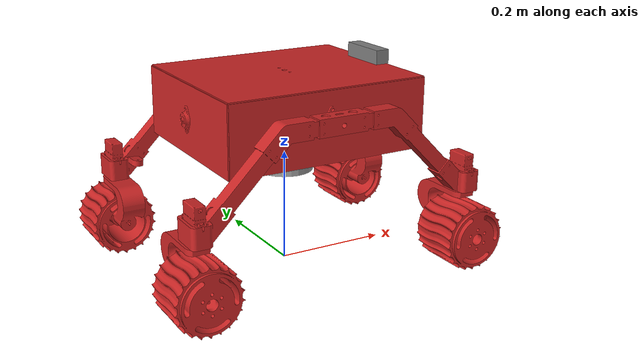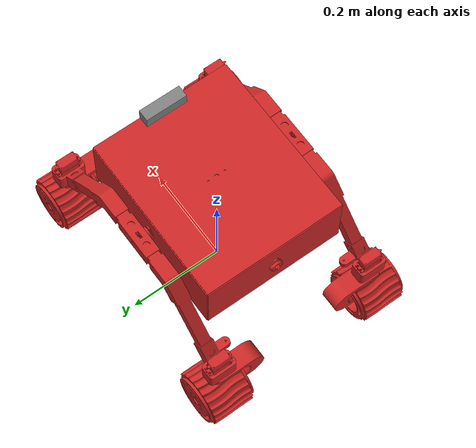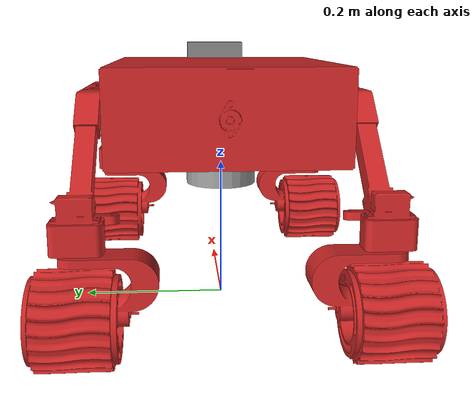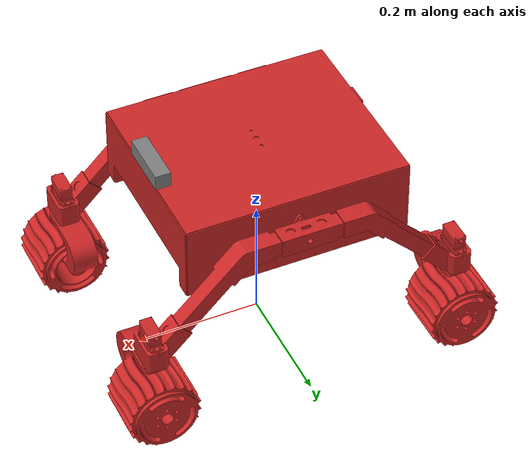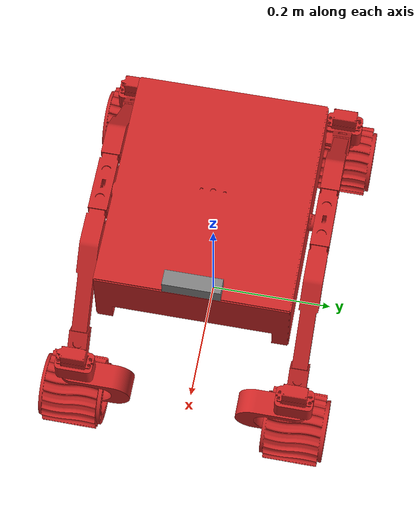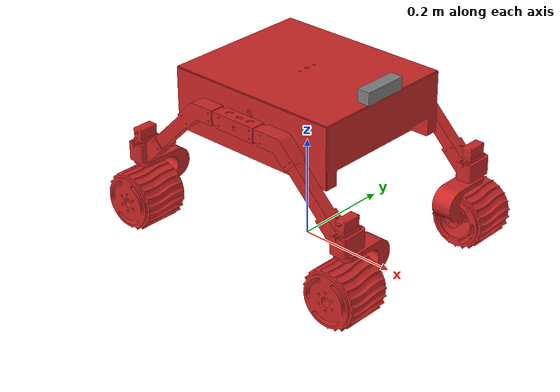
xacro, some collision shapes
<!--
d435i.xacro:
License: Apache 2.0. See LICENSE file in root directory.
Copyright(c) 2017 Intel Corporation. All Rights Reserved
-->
<?xml version="1.1"?>

<robot name="anveshika" xmlns:xacro="https://www.ros.org/wiki/xacro">

    <xacro:include filename="$(find anveshika_description)/urdf/d435i.xacro"/>
    <xacro:include filename="$(find anveshika_description)/urdf/rover.xacro"/>
    <xacro:include filename="$(find anveshika_description)/urdf/gazebo.xacro"/>
    <xacro:include filename="$(find anveshika_description)/urdf/lidar.xacro"/>

</robot>

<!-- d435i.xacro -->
<robot xmlns:xacro="http://ros.org/wiki/xacro">
  <!--File includes-->
  <xacro:include filename="$(find anveshika_description)/urdf/d435i.gazebo.xacro"/>

  <xacro:macro name="sensor_d435i" params="name:=camera
                                          topics_ns:=camera
                                          visualize:=false
                                          align_depth:=false
                                          enable_pointCloud:=false

                                          unite_imu_method:=false
                                          accel_fps:=250
                                          gyro_fps:=400

                                          clip_distance:=-1.0
                                          depth_width:=1280
                                          depth_height:=720
                                          depth_fps:=30

                                          infra_width:=640
                                          infra_height:=480
                                          infra_fps:=30

                                          color_width:=1920
                                          color_height:=1080
                                          color_fps:=30">
    <xacro:property name="M_PI" value="3.1415926535897931"/>

    <!-- The following values are approximate, and the camera node
     publishing TF values with actual calibrated camera extrinsic values -->
    <xacro:property name="d435i_cam_depth_to_left_ir_offset" value="0.0"/>
    <xacro:property name="d435i_cam_depth_to_right_ir_offset" value="-0.050"/>
    <xacro:property name="d435i_cam_depth_to_color_offset" value="0.015"/>

    <!-- The following values model the aluminum peripherial case for the
  	D435 camera, with the camera joint represented by the actual
  	peripherial camera tripod mount -->
    <xacro:property name="d435i_cam_width" value="0.090"/>
    <xacro:property name="d435i_cam_height" value="0.025"/>
    <xacro:property name="d435i_cam_depth" value="0.02505"/>
    <xacro:property name="d435i_cam_mount_from_center_offset" value="0.0149"/>

    <!-- The following offset is relative the the physical D435 camera peripherial
  	camera tripod mount -->
    <xacro:property name="d435i_cam_depth_px" value="${d435i_cam_mount_from_center_offset}"/>
    <xacro:property name="d435i_cam_depth_py" value="0.0175"/>
    <xacro:property name="d435i_cam_depth_pz" value="${d435i_cam_height/2}"/>

    <material name="${name}_aluminum">
	  <color rgba="0.5 0.5 0.5 1"/>
    </material>

    <link name="${name}_bottom_screw_frame"/>

    <joint name="${name}_link_joint" type="fixed">
      <origin xyz="0 ${d435i_cam_depth_py} ${d435i_cam_depth_pz}" rpy="0 0 0"/>
      <parent link="${name}_bottom_screw_frame"/>
      <child link="${name}_link"/>
    </joint>

    <link name="${name}_link">
      <visual>
      <origin xyz="${d435i_cam_mount_from_center_offset} ${-d435i_cam_depth_py} 0" rpy="${M_PI/2} 0 ${M_PI/2}"/>
        <geometry>
          <mesh filename="package://anveshika_description/meshes/d435.dae"/>
        </geometry>
        <material name="${name}_aluminum"/>
      </visual>
      <collision>
        <origin xyz="0 ${-d435i_cam_depth_py} 0" rpy="0 0 0"/>
        <geometry>
        <box size="${d435i_cam_depth} ${d435i_cam_width} ${d435i_cam_height}"/>
        </geometry>
      </collision>
      <inertial>
        <!-- The following are not reliable values, and should not be used for modeling -->
        <mass value="0.564"/>
        <origin xyz="0 0 0"/>
        <inertia ixx="0.003881243" ixy="0.0" ixz="0.0" iyy="0.000498940" iyz="0.0" izz="0.003879257"/>
      </inertial>
    </link>

    <!-- camera depth joints and links -->
    <joint name="${name}_depth_joint" type="fixed">
      <origin xyz="0 0 0" rpy="0 0 0"/>
      <parent link="${name}_link"/>
      <child link="${name}_depth_frame"/>
    </joint>
    <link name="${name}_depth_frame"/>

    <joint name="${name}_depth_optical_joint" type="fixed">
      <origin xyz="0 0 0" rpy="${-M_PI/2} 0 ${-M_PI/2}"/>
      <parent link="${name}_depth_frame"/>
      <child link="${name}_depth_optical_frame"/>
    </joint>
    <link name="${name}_depth_optical_frame"/>

    <!-- camera left IR joints and links -->
    <joint name="${name}_left_ir_joint" type="fixed">
      <origin xyz="0 ${d435i_cam_depth_to_left_ir_offset} 0" rpy="0 0 0"/>
      <parent link="${name}_depth_frame"/>
      <child link="${name}_left_ir_frame"/>
    </joint>
    <link name="${name}_left_ir_frame"/>

    <joint name="${name}_left_ir_optical_joint" type="fixed">
      <origin xyz="0 0 0" rpy="${-M_PI/2} 0 ${-M_PI/2}"/>
      <parent link="${name}_left_ir_frame"/>
      <child link="${name}_left_ir_optical_frame"/>
    </joint>
    <link name="${name}_left_ir_optical_frame"/>

    <!-- camera right IR joints and links -->
    <joint name="${name}_right_ir_joint" type="fixed">
      <origin xyz="0 ${d435i_cam_depth_to_right_ir_offset} 0" rpy="0 0 0"/>
      <parent link="${name}_depth_frame"/>
      <child link="${name}_right_ir_frame"/>
    </joint>
    <link name="${name}_right_ir_frame"/>

    <joint name="${name}_right_ir_optical_joint" type="fixed">
      <origin xyz="0 0 0" rpy="${-M_PI/2} 0 ${-M_PI/2}"/>
      <parent link="${name}_right_ir_frame"/>
      <child link="${name}_right_ir_optical_frame"/>
    </joint>
    <link name="${name}_right_ir_optical_frame"/>

    <!-- camera color joints and links -->
    <joint name="${name}_color_joint" type="fixed">
      <origin xyz="0 ${d435i_cam_depth_to_color_offset} 0" rpy="0 0 0"/>
      <parent link="${name}_depth_frame"/>
      <child link="${name}_color_frame"/>
    </joint>
    <link name="${name}_color_frame"/>

    <joint name="${name}_color_optical_joint" type="fixed">
      <origin xyz="0 0 0" rpy="${-M_PI/2} 0 ${-M_PI/2}"/>
      <parent link="${name}_color_frame"/>
      <child link="${name}_color_optical_frame"/>
    </joint>
    <link name="${name}_color_optical_frame"/>

    <!-- camera accel joints and links -->
    <joint name="${name}_accel_joint" type="fixed">
      <origin xyz="-0.00174 0.00552 0.0176" rpy="0 0 0"/>
      <parent link="${name}_link"/>
      <child link="${name}_accel_frame"/>
    </joint>
    <link name="${name}_accel_frame"/>

    <joint name="${name}_accel_optical_joint" type="fixed">
      <origin xyz="0 0 0" rpy="${-M_PI/2} 0 ${-M_PI/2}"/>
      <parent link="${name}_accel_frame"/>
      <child link="${name}_accel_optical_frame"/>
    </joint>
    <link name="${name}_accel_optical_frame"/>

    <!-- camera gyro joints and links -->
    <joint name="${name}_gyro_joint" type="fixed">
      <origin xyz="-0.00174 0.00552 0.0176" rpy="0 0 0"/>
      <parent link="${name}_link"/>
      <child link="${name}_gyro_frame"/>
    </joint>
    <link name="${name}_gyro_frame"/>

    <joint name="${name}_gyro_optical_joint" type="fixed">
      <origin xyz="0 0 0" rpy="${-M_PI/2} 0 ${-M_PI/2}"/>
      <parent link="${name}_gyro_frame"/>
      <child link="${name}_gyro_optical_frame"/>
    </joint>
    <link name="${name}_gyro_optical_frame"/>

    <!-- Realsense Gazebo Plugin -->
    <xacro:gazebo_d435i camera_name="${name}"
                        topics_ns="${topics_ns}"
                        reference_link="${name}_link"

                        depth_optical_frame="${name}_depth_optical_frame"
                        depth_width="${depth_width}"
                        depth_height="${depth_height}"
                        depth_fps="${depth_fps}"

                        color_optical_frame="${name}_color_optical_frame"
                        color_width="${color_width}"
                        color_height="${color_height}"
                        color_fps="${color_fps}"

                        infrared1_optical_frame="${name}_left_ir_optical_frame"
                        infrared2_optical_frame="${name}_right_ir_optical_frame"
                        infra_width="${infra_width}"
                        infra_height="${infra_height}"
                        infra_fps="${infra_fps}"

                        accel_optical_frame="${name}_accel_optical_frame"
                        gyro_optical_frame="${name}_gyro_optical_frame"
                        accel_fps="${accel_fps}"
                        gyro_fps="${gyro_fps}"

                        enable_pointCloud="${enable_pointCloud}"
                        unite_imu_method="${unite_imu_method}"
                        clip_distance="${clip_distance}"
                        align_depth="${align_depth}"
                        visualize="${visualize}"
    />

  </xacro:macro>
</robot>

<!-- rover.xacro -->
<robot xmlns:xacro="https://www.ros.org/wiki/xacro">

    <!-- For RViz -->
    <xacro:property name="meshes_address" value="package://anveshika_description/meshes/rover" />

    <link name="base_footprint"/>

    <joint name="base_joint" type = "fixed">
        <parent link="base_footprint"/>
        <child link="base_link"/>

        <origin xyz="0 0 0.235" rpy="0 0 0"/>
    </joint>

    <link name = "base_link">
        <visual>
            <geometry>
                <mesh filename="${meshes_address}/box.stl"
                       scale="0.001 0.001 0.001" />
            </geometry>

            <origin xyz = "0 0 0" rpy = "0 0 0"/>
        </visual>
        <collision>
            <geometry>
                <box size="0.36 0.30 0.12" />
            </geometry>

            <origin xyz = "0 0 0.045" rpy = "0 0 0"/>
        </collision>

        <inertial>
            <origin xyz="0 0 0" rpy="0 0 0"/>
            <mass value="4.0"/>
            <inertia ixx="${0.05835}" ixy = "0" ixz = "${-0.0008805}"
                    iyy="${0.06894}" iyz = "0"
                        izz="${0.09218}"/>
        </inertial>
    </link>

    <gazebo reference="base_link">
        <material>Gazebo/Red</material>
    </gazebo>

    <joint name="realsense_joint" type = "fixed">
        <parent link="base_link"/>
        <child link="realsense_d435i_bottom_screw_frame"/>

        <origin xyz="0.17 0 0.11" rpy="0 0 0"/>
    </joint>

    <xacro:sensor_d435i name="realsense_d435i"
                        topics_ns="camera"
                        visualize="false"
                        align_depth="true"
                        enable_pointCloud="true"
                        unite_imu_method="linear_interpolation"
                        accel_fps="250"
                        gyro_fps="400"
                        clip_distance="6.0"
                        depth_width="1280"
                        depth_height="720"
                        depth_fps="30"
                        infra_width="640"
                        infra_height="480"
                        infra_fps="30"
                        color_width="1920"
                        color_height="1080"
                        color_fps="30"/>

    <link name = "left_bogie">
        <visual>
            <geometry>
                <mesh filename="${meshes_address}/left_bogie.stl"
                       scale="0.001 0.001 0.001" />
            </geometry>

            <origin xyz = "0 0 0" rpy = "0 0 ${pi}"/>
        </visual>

        <collision>
            <geometry>
                <mesh filename="${meshes_address}/collision_bogie.stl"
                       scale="0.001 0.001 0.001" />
            </geometry>

            <origin xyz = "0 -0.015 0" rpy = "0 0 0"/>
        </collision>

        <inertial>
            <origin xyz="0 0 0" rpy="0 0 ${pi}"/>
            <mass value="1.0"/>
            <inertia ixx="${0.008645}" ixy = "0" ixz = "${0.0001546}"
                    iyy="${0.05017}" iyz = "${0.001152}"
                    izz="${0.04221}"/>
        </inertial>
    </link>

    <gazebo reference="left_bogie">
        <material>Gazebo/Red</material>
    </gazebo>

    <joint name="base_left_bogie_joint" type="revolute">
        <parent link="base_link"/>
        <child link="left_bogie"/>

        <origin xyz="0 0.190 0.06" rpy="0 0 0"/>

        <axis xyz="0 1 0"/>
        <limit lower="${-pi/2}" upper="${pi/2}" effort="0" velocity="100" />
    </joint>

    <link name = "right_bogie">
        <visual>
            <geometry>
                <mesh filename="${meshes_address}/right_bogie.stl"
                       scale="0.001 0.001 0.001" />
            </geometry>

            <origin xyz = "0 0 0" rpy = "0 0 ${pi}"/>
        </visual>

        <collision>
            <geometry>
                <mesh filename="${meshes_address}/collision_bogie.stl"
                       scale="0.001 0.001 0.001" />
            </geometry>

            <origin xyz = "0 0.015 0" rpy = "0 0 0"/>
        </collision>

        <inertial>
            <origin xyz="0 0 0" rpy="0 0 ${pi}"/>
            <mass value="1.0"/>
            <inertia ixx="${0.008645}" ixy = "0" ixz = "${0.0001546}"
                    iyy="${0.05017}" iyz = "${-0.001152}"
                    izz="${0.04221}"/>
        </inertial>
    </link>

    <gazebo reference="right_bogie">
        <material>Gazebo/Red</material>
    </gazebo>

    <joint name="base_right_bogie_joint" type="revolute">
        <parent link="base_link"/>
        <child link="right_bogie"/>

        <origin xyz="0 -0.190 0.06" rpy="0 0 0"/>

        <axis xyz="0 -1.0 0"/>

        <limit lower="${-pi/2}" upper="${pi/2}" effort="0" velocity="100" />

        <mimic joint="base_left_bogie_joint" multiplier="1"/>

    </joint>

    <xacro:macro name="motor_mount_link" params="prefix x y z r p ya">
        <link name="${prefix}_motor_mount">
            <visual>
                <geometry>
                    <mesh filename="${meshes_address}/drive_motor_mount.stl"
                           scale="0.001 0.001 0.001" />
                </geometry>

                <origin xyz="${x} ${y} ${z}" rpy="${r} ${p} ${ya}"/>

            </visual>

            <collision>
                <geometry>
                    <mesh filename="${meshes_address}/collision_motor_mount.stl"
                           scale="0.001 0.001 0.001" />
                </geometry>

                <origin xyz = "${x} ${y} ${z}" rpy = "${r} ${p} ${ya}"/>
            </collision>

            <inertial>
                <origin xyz="${x} ${y} ${z}" rpy="${r} ${p} ${ya}"/>
                <mass value="0.3"/>
                <inertia ixx="${0.0003244}" ixy = "0" ixz = "${-0.0002914}"
                        iyy="${0.001012}" iyz = "0"
                        izz="${0.0007519}"/>
            </inertial>
        </link>

        <gazebo reference="${prefix}_motor_mount">
            <material>Gazebo/Red</material>
        </gazebo>
    </xacro:macro>

    <xacro:motor_mount_link prefix="front_left"
                            x="0" y="0" z="0"
                            r="0" p="0" ya="${-pi/2}" />

    <joint name="left_bogie_front_left_motor_mount_joint" type="revolute">
        <parent link="left_bogie"/>
        <child link="front_left_motor_mount"/>

        <origin xyz="0.25 -0.005 -0.223" rpy="0 0 0"/>

        <axis xyz="0 0 1"/>
        <limit lower="${-pi/2}" upper="${pi/2}" effort="100" velocity="100" />

        <command_interface name="position">
            <param name="min">-${pi/2}</param>
            <param name="max">${pi/2}</param>
        </command_interface>
        <state_interface name="position"/>
        <state_interface name="velocity"/>
        <state_interface name="acceleration"/>
    </joint>

    <xacro:motor_mount_link prefix="back_left"
                            x="0" y="0" z="0"
                            r="0" p="0" ya="${-pi/2}" />

    <joint name="left_bogie_back_left_motor_mount_joint" type="revolute">
        <parent link="left_bogie"/>
        <child link="back_left_motor_mount"/>

        <origin xyz="-0.25 -0.005 -0.223" rpy="0 0 0"/>

        <axis xyz="0 0 1"/>
        <limit lower="${-pi/2}" upper="${pi/2}" effort="100" velocity="100" />

        <command_interface name="position">
            <param name="min">-${pi/2}</param>
            <param name="max">${pi/2}</param>
        </command_interface>
        <state_interface name="position"/>
        <state_interface name="velocity"/>
        <state_interface name="acceleration"/>
    </joint>

    <xacro:motor_mount_link prefix="front_right"
                            x="0" y="0" z="0"
                            r="0" p="0" ya="${pi/2}" />

    <joint name="right_bogie_front_right_motor_mount_joint" type="revolute">
        <parent link="right_bogie"/>
        <child link="front_right_motor_mount"/>

        <origin xyz="0.25 0.005 -0.223" rpy="0 0 0"/>

        <axis xyz="0 0 1"/>
        <limit lower="${-pi/2}" upper="${pi/2}" effort="100" velocity="100" />

        <command_interface name="position">
            <param name="min">-${pi/2}</param>
            <param name="max">${pi/2}</param>
        </command_interface>
        <state_interface name="position"/>
        <state_interface name="velocity"/>
        <state_interface name="acceleration"/>
    </joint>

    <xacro:motor_mount_link prefix="back_right"
                            x="0" y="0" z="0"
                            r="0" p="0" ya="${pi/2}" />

    <joint name="right_bogie_back_right_motor_mount_joint" type="revolute">
        <parent link="right_bogie"/>
        <child link="back_right_motor_mount"/>

        <origin xyz="-0.25 0.005 -0.223" rpy="0 0 0"/>

        <axis xyz="0 0 1"/>
        <limit lower="${-pi/2}" upper="${pi/2}" effort="100" velocity="100" />

        <command_interface name="position">
            <param name="min">-${pi/2}</param>
            <param name="max">${pi/2}</param>
        </command_interface>
        <state_interface name="position"/>
        <state_interface name="velocity"/>
        <state_interface name="acceleration"/>
    </joint>

    <xacro:macro name="wheel_link" params="prefix x y z r p ya">
        <link name="${prefix}_wheel">
            <visual>
                <geometry>
                    <mesh filename="${meshes_address}/wheel.stl"
                           scale="0.001 0.001 0.001" />
                </geometry>

                <origin xyz="${x} ${y} ${z}" rpy="${r} ${p} ${ya}"/>

            </visual>

            <collision>
                <geometry>
                    <cylinder radius="0.06" length="0.1"/>
                </geometry>
                <xacro:if value="${r == pi/2}">
                    <origin xyz = "${x} ${y - 0.05} ${z}" rpy = "${r} ${p} ${ya}"/>
                </xacro:if>

                <xacro:unless value="${r == pi/2}">
                    <origin xyz = "${x} ${y + 0.05} ${z}" rpy = "${r} ${p} ${ya}"/>
                </xacro:unless>
            </collision>

            <inertial>
                <origin xyz="${x} ${y} ${z}" rpy="${r} ${p} ${ya}"/>
                <mass value="0.45"/>
                <inertia ixx="${0.001735}" ixy = "0" ixz = "0"
                        iyy="${0.001735}" iyz = "0"
                        izz="${0.0008776}"/>
            </inertial>
        </link>

        <gazebo reference="${prefix}_wheel">
            <material>Gazebo/Red</material>
        </gazebo>
    </xacro:macro>

    <xacro:wheel_link prefix="front_left"
                            x="0" y="0" z="0"
                            r="${pi/2}" p="0" ya="0" />

    <joint name="front_left_wheel_joint" type="continuous">
        <parent link="front_left_motor_mount"/>
        <child link="front_left_wheel"/>

        <origin xyz="0 0.045 -0.006" rpy="0 0 0"/>

        <axis xyz="0 1 0"/>

        <command_interface name="velocity">
            <param name="min">-1</param>
            <param name="max">1</param>
        </command_interface>
        <state_interface name="position"/>
        <state_interface name="velocity"/>
        <state_interface name="acceleration"/>
    </joint>

    <xacro:wheel_link prefix="back_left"
                            x="0" y="0" z="0"
                            r="${pi/2}" p="0" ya="0" />

    <joint name="back_left_wheel_joint" type="continuous">
        <parent link="back_left_motor_mount"/>
        <child link="back_left_wheel"/>

        <origin xyz="0 0.045 -0.006" rpy="0 0 0"/>

        <axis xyz="0 1 0"/>

        <command_interface name="velocity">
            <param name="min">-1</param>
            <param name="max">1</param>
        </command_interface>
        <state_interface name="position"/>
        <state_interface name="velocity"/>
        <state_interface name="acceleration"/>
    </joint>

    <xacro:wheel_link prefix="front_right"
                            x="0" y="0" z="0"
                            r="${-pi/2}" p="0" ya="0" />

    <joint name="front_right_wheel_joint" type="continuous">
        <parent link="front_right_motor_mount"/>
        <child link="front_right_wheel"/>

        <origin xyz="0 -0.045 -0.006" rpy="0 0 0"/>

        <axis xyz="0 1 0"/>

        <command_interface name="velocity">
            <param name="min">-1</param>
            <param name="max">1</param>
        </command_interface>
        <state_interface name="position"/>
        <state_interface name="velocity"/>
        <state_interface name="acceleration"/>
    </joint>

    <xacro:wheel_link prefix="back_right"
                            x="0" y="0" z="0"
                            r="${-pi/2}" p="0" ya="0" />

    <joint name="back_right_wheel_joint" type="continuous">
        <parent link="back_right_motor_mount"/>
        <child link="back_right_wheel"/>

        <origin xyz="0 -0.045 -0.006" rpy="0 0 0"/>

        <axis xyz="0 1 0"/>

        <command_interface name="velocity">
            <param name="min">-1</param>
            <param name="max">1</param>
        </command_interface>
        <state_interface name="position"/>
        <state_interface name="velocity"/>
        <state_interface name="acceleration"/>
    </joint>

</robot>

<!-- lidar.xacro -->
<robot xmlns:xacro="https://www.ros.org/wiki/xacro">

  <!-- Joint between base_link and lidar frame -->
  <joint name="laser_joint" type="fixed">
    <parent link="base_link"/>
    <child link="laser_frame"/>
    <origin xyz="0 0 0.1" rpy="0 0 0"/>
  </joint>

  <!-- LiDAR physical link -->
  <link name="laser_frame">
    <visual>
      <geometry>
        <cylinder radius="0.05" length="0.05"/>
      </geometry>
      <origin xyz="0 0 -0.14" rpy="0 0 0"/>
      <material name="Grey">
        <color rgba="0.6 0.6 0.6 1"/>
      </material>
    </visual>
    <collision>
      <geometry>
        <cylinder radius="0.05" length="0.05"/>
      </geometry>
      <origin xyz="0 0 0" rpy="0 0 0"/>
    </collision>
    <inertial>
      <mass value="0.3"/>
      <inertia ixx="0.001" ixy="0.0" ixz="0.0"
               iyy="0.001" iyz="0.0"
               izz="0.001"/>
    </inertial>
  </link>

  <gazebo reference="laser_frame">
    <material>Gazebo/Red</material>
    <sensor name="laser_sensor" type="ray">
      <pose>0 0 0 0 0 0</pose>
      <visualize>true</visualize>
      <update_rate>10.0</update_rate>
      <ray>
        <scan>
          <horizontal>
            <samples>360</samples>
            <resolution>1</resolution>
            <min_angle>-3.1415</min_angle>
            <max_angle>3.1415</max_angle>
          </horizontal>
        </scan>
        <range>
          <min>0.12</min>
          <max>12.0</max>
          <resolution>0.005</resolution>
        </range>
        <noise>
          <type>gaussian</type>
          <mean>0.0</mean>
          <stddev>0.002</stddev>
        </noise>
      </ray>
      <plugin name="gz::sim::systems::LaserSensorPlugin"
              filename="gz-sim-laser-sensor-system">
        <topic>/scan</topic>
        <frame_name>laser_frame</frame_name>
      </plugin>
    </sensor>
  </gazebo>

</robot>
